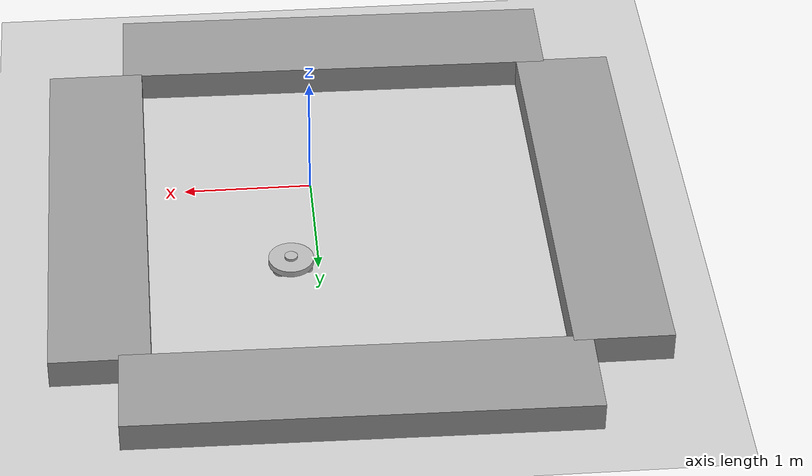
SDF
<sdf version="1.7">
 <world name="default">
  <model name="ground_plane">
   <static>1</static>
   <link name="link">
    <collision name="collision">
     <geometry><plane><normal>0 0 1</normal><size>100 100</size></plane></geometry>
     <surface>
      <contact><collide_bitmask>65535</collide_bitmask></contact>
      <friction><ode><mu>100</mu><mu2>50</mu2></ode></friction>
     </surface>
    </collision>
    <visual name="visual">
     <cast_shadows>0</cast_shadows>
     <geometry><plane><normal>0 0 1</normal><size>100 100</size></plane></geometry>
     <material>
      <script><uri>file://media/materials/scripts/gazebo.material</uri><name>Gazebo/Grey</name></script>
     </material>
    </visual>
   </link>
  </model>
  <light name="sun" type="directional">
   <pose>0 0 10 0 -0 0</pose>
   <diffuse>0.8 0.8 0.8 1</diffuse>
   <specular>0.2 0.2 0.2 1</specular>
   <attenuation>
    <range>1000</range>
    <constant>0.9</constant>
    <linear>0.01</linear>
    <quadratic>0.001</quadratic>
   </attenuation>
   <direction>-0.5 0.1 -0.9</direction>
   <spot><inner_angle>0</inner_angle><outer_angle>0</outer_angle><falloff>0</falloff></spot>
  </light>
  <plugin name="ros_gazebo" filename="libgazebo_ros_init.so"/>
  <plugin name="ros_gazebo_factory" filename="libgazebo_ros_factory.so"/>
  <gravity>0 0 -9.8</gravity>
  <magnetic_field>6e-06 2.3e-05 -4.2e-05</magnetic_field>
  <atmosphere type="adiabatic"/>
  <physics type="ode">
   <max_step_size>0.001</max_step_size>
   <real_time_factor>1</real_time_factor>
   <real_time_update_rate>1000</real_time_update_rate>
  </physics>
  <scene><ambient>0.4 0.4 0.4 1</ambient><background>0.7 0.7 0.7 1</background><shadows>1</shadows></scene>
  <audio><device>default</device></audio>
  <spherical_coordinates>
   <surface_model>EARTH_WGS84</surface_model>
   <latitude_deg>0</latitude_deg>
   <longitude_deg>0</longitude_deg>
   <elevation>0</elevation>
   <heading_deg>0</heading_deg>
  </spherical_coordinates>
  <model name="mbot">
   <link name="odom">
    <inertial>
     <pose>0 0 0.0056 0 -0 0</pose>
     <mass>1.25</mass>
     <inertia>
      <ixx>0.0213058</ixx>
      <ixy>0</ixy>
      <ixz>0</ixz>
      <iyy>0.0213058</iyy>
      <iyz>0</iyz>
      <izz>0.0111</izz>
     </inertia>
    </inertial>
    <collision name="odom_fixed_joint_lump__base_link_collision">
     <geometry><cylinder><length>0.05</length><radius>0.175</radius></cylinder></geometry>
    </collision>
    <collision name="odom_fixed_joint_lump__imu_link_collision_1">
     <geometry><box><size>0.01 0.01 0.01</size></box></geometry>
    </collision>
    <collision name="odom_fixed_joint_lump__laser_link_collision_2">
     <pose>0 0 0.035 0 -0 0</pose>
     <geometry><cylinder><length>0.05</length><radius>0.05</radius></cylinder></geometry>
    </collision>
    <visual name="odom_fixed_joint_lump__base_link_visual">
     <geometry><cylinder><length>0.05</length><radius>0.175</radius></cylinder></geometry>
    </visual>
    <visual name="odom_fixed_joint_lump__imu_link_visual_1">
     <geometry><box><size>0.01 0.01 0.01</size></box></geometry>
    </visual>
    <visual name="odom_fixed_joint_lump__laser_link_visual_2">
     <pose>0 0 0.035 0 -0 0</pose>
     <geometry><cylinder><length>0.02</length><radius>0.05</radius></cylinder></geometry>
    </visual>
    <sensor name="imu_sensor" type="imu">
     <always_on>1</always_on>
     <update_rate>100</update_rate>
     <visualize>0</visualize>
     <plugin name="imu_plugin" filename="libgazebo_ros_imu_sensor.so">
      <ros>
       <namespace>/mbot</namespace>
       <remapping>imu/data_raw:=imu/data_raw</remapping>
       <remapping>imu/data:=imu/data</remapping>
       <remapping>imu/temperature:=imu/temperature</remapping>
      </ros>
      <frame_name>imu_link</frame_name>
      <topic>imu/data</topic>
      <queue_size>10</queue_size>
      <gaussian_noise>0.0</gaussian_noise>
      <update_rate>100.0</update_rate>
     </plugin>
     <linear_acceleration>
      <noise type="gaussian">
       <mean>0.0</mean>
       <stddev>0.01</stddev>
       <bias_mean>0.0</bias_mean>
       <bias_stddev>0.001</bias_stddev>
      </noise>
     </linear_acceleration>
     <angular_velocity>
      <noise type="gaussian">
       <mean>0.0</mean>
       <stddev>0.005</stddev>
       <bias_mean>0.0</bias_mean>
       <bias_stddev>0.0001</bias_stddev>
      </noise>
     </angular_velocity>
    </sensor>
    <sensor name="laser_sensor" type="ray">
     <visualize>0</visualize>
     <update_rate>10</update_rate>
     <ray>
      <scan>
       <horizontal>
        <samples>360</samples>
        <resolution>1</resolution>
        <min_angle>0</min_angle>
        <max_angle>6.28319</max_angle>
       </horizontal>
       <vertical><samples>1</samples><min_angle>0</min_angle><max_angle>0</max_angle></vertical>
      </scan>
      <range><min>0.1</min><max>10</max><resolution>0.01</resolution></range>
     </ray>
     <plugin name="laser_plugin" filename="libgazebo_ros_ray_sensor.so">
      <ros><namespace>/mbot</namespace><remapping>scan:=laser/scan</remapping></ros>
      <output_type>sensor_msgs/LaserScan</output_type>
     </plugin>
     <pose>0 0 0.035 0 -0 0</pose>
    </sensor>
   </link>
   <joint name="caster_joint" type="revolute">
    <pose relative_to="odom">0.15 0 -0.05 0 -0 0</pose>
    <parent>odom</parent>
    <child>caster_wheel_link</child>
    <axis>
     <xyz>0 0 1</xyz>
     <limit><lower>-1e+16</lower><upper>1e+16</upper></limit>
     <dynamics><spring_reference>0</spring_reference><spring_stiffness>0</spring_stiffness></dynamics>
    </axis>
   </joint>
   <link name="caster_wheel_link">
    <pose relative_to="caster_joint">0 0 0 0 -0 0</pose>
    <inertial>
     <mass>0.05</mass>
     <inertia><ixx>0.0001</ixx><ixy>0</ixy><ixz>0</ixz><iyy>0.0001</iyy><iyz>0</iyz><izz>0.0001</izz></inertia>
    </inertial>
    <collision name="caster_wheel_link_collision">
     <geometry><sphere><radius>0.025</radius></sphere></geometry>
    </collision>
    <visual name="caster_wheel_link_visual"><geometry><sphere><radius>0.025</radius></sphere></geometry></visual>
   </link>
   <joint name="left_wheel_joint" type="revolute">
    <pose relative_to="odom">-0.05 0.125 -0.025 0 -0 0</pose>
    <parent>odom</parent>
    <child>left_wheel_link</child>
    <axis>
     <xyz>0 1 0</xyz>
     <limit><lower>-1e+16</lower><upper>1e+16</upper></limit>
     <dynamics><spring_reference>0</spring_reference><spring_stiffness>0</spring_stiffness></dynamics>
    </axis>
   </joint>
   <link name="left_wheel_link">
    <pose relative_to="left_wheel_joint">0 0 0 0 -0 0</pose>
    <inertial>
     <mass>0.1</mass>
     <inertia><ixx>0.001</ixx><ixy>0</ixy><ixz>0</ixz><iyy>0.001</iyy><iyz>0</iyz><izz>0.001</izz></inertia>
    </inertial>
    <collision name="left_wheel_link_collision">
     <pose>0 0 0 1.5708 -0 0</pose>
     <geometry><cylinder><length>0.02</length><radius>0.05</radius></cylinder></geometry>
    </collision>
    <visual name="left_wheel_link_visual">
     <pose>0 0 0 1.5708 -0 0</pose>
     <geometry><cylinder><length>0.02</length><radius>0.05</radius></cylinder></geometry>
    </visual>
   </link>
   <joint name="right_wheel_joint" type="revolute">
    <pose relative_to="odom">-0.05 -0.125 -0.025 0 -0 0</pose>
    <parent>odom</parent>
    <child>right_wheel_link</child>
    <axis>
     <xyz>0 1 0</xyz>
     <limit><lower>-1e+16</lower><upper>1e+16</upper></limit>
     <dynamics><spring_reference>0</spring_reference><spring_stiffness>0</spring_stiffness></dynamics>
    </axis>
   </joint>
   <link name="right_wheel_link">
    <pose relative_to="right_wheel_joint">0 0 0 0 -0 0</pose>
    <inertial>
     <mass>0.1</mass>
     <inertia><ixx>0.001</ixx><ixy>0</ixy><ixz>0</ixz><iyy>0.001</iyy><iyz>0</iyz><izz>0.001</izz></inertia>
    </inertial>
    <collision name="right_wheel_link_collision">
     <pose>0 0 0 1.5708 -0 0</pose>
     <geometry><cylinder><length>0.02</length><radius>0.05</radius></cylinder></geometry>
    </collision>
    <visual name="right_wheel_link_visual">
     <pose>0 0 0 1.5708 -0 0</pose>
     <geometry><cylinder><length>0.02</length><radius>0.05</radius></cylinder></geometry>
    </visual>
   </link>
   <static>0</static>
   <plugin name="differential_drive" filename="libgazebo_ros_diff_drive.so">
    <ros>
     <namespace>/mbot</namespace>
     <remapping>cmd_vel:=cmd_vel</remapping>
     <remapping>odom:=odom</remapping>
    </ros>
    <wheel_separation>0.25</wheel_separation>
    <wheel_diameter>0.1</wheel_diameter>
    <max_wheel_speed>2.0</max_wheel_speed>
    <torque>10.0</torque>
    <left_joint>left_wheel_joint</left_joint>
    <right_joint>right_wheel_joint</right_joint>
    <publish_odom>1</publish_odom>
    <publish_odom_tf>1</publish_odom_tf>
    <publish_wheel_tf>1</publish_wheel_tf>
   </plugin>
   <pose>0.212279 0.988361 0.075 -0 1e-06 2.71185</pose>
  </model>
  <model name="wall">
   <link name="link">
    <inertial>
     <mass>0.611483</mass>
     <inertia>
      <ixx>0.624096</ixx>
      <ixy>0</ixy>
      <ixz>0</ixz>
      <iyy>0.0318601</iyy>
      <iyz>0</iyz>
      <izz>0.65049</izz>
     </inertia>
    </inertial>
    <pose>-1.34235 1.17237 -5e-06 0 -0 0</pose>
    <visual name="visual">
     <geometry><box><size>0.75604 3.49197 0.2316</size></box></geometry>
     <material>
      <script><name>Gazebo/Grey</name><uri>file://media/materials/scripts/gazebo.material</uri></script>
      <shader type="pixel"/>
     </material>
    </visual>
    <collision name="collision">
     <geometry><box><size>0.75604 3.49197 0.2316</size></box></geometry>
     <surface>
      <friction>
       <ode><mu>1</mu><mu2>1</mu2><fdir1>0 0 0</fdir1><slip1>0</slip1><slip2>0</slip2></ode>
       <torsional>
        <coefficient>1</coefficient>
        <patch_radius>0</patch_radius>
        <surface_radius>0</surface_radius>
        <use_patch_radius>1</use_patch_radius>
        <ode><slip>0</slip></ode>
       </torsional>
      </friction>
      <bounce><restitution_coefficient>0</restitution_coefficient><threshold>1e+06</threshold></bounce>
      <contact>
       <collide_without_contact>0</collide_without_contact>
       <collide_without_contact_bitmask>1</collide_without_contact_bitmask>
       <collide_bitmask>1</collide_bitmask>
       <ode>
        <soft_cfm>0</soft_cfm>
        <soft_erp>0.2</soft_erp>
        <kp>1e+13</kp>
        <kd>1</kd>
        <max_vel>0.01</max_vel>
        <min_depth>0</min_depth>
       </ode>
       <bullet>
        <split_impulse>1</split_impulse>
        <split_impulse_penetration_threshold>-0.01</split_impulse_penetration_threshold>
        <soft_cfm>0</soft_cfm>
        <soft_erp>0.2</soft_erp>
        <kp>1e+13</kp>
        <kd>1</kd>
       </bullet>
      </contact>
     </surface>
    </collision>
   </link>
   <link name="link_clone">
    <inertial>
     <mass>0.611483</mass>
     <inertia>
      <ixx>0.624096</ixx>
      <ixy>0</ixy>
      <ixz>0</ixz>
      <iyy>0.0318601</iyy>
      <iyz>0</iyz>
      <izz>0.65049</izz>
     </inertia>
    </inertial>
    <pose>2.52018 1.13184 -1.7e-05 -1e-05 0 0</pose>
    <visual name="visual">
     <geometry><box><size>0.75604 3.49197 0.2316</size></box></geometry>
     <material>
      <script><name>Gazebo/Grey</name><uri>file://media/materials/scripts/gazebo.material</uri></script>
      <shader type="pixel"/>
     </material>
    </visual>
    <collision name="collision">
     <geometry><box><size>0.75604 3.49197 0.2316</size></box></geometry>
     <surface>
      <friction>
       <ode><mu>1</mu><mu2>1</mu2><fdir1>0 0 0</fdir1><slip1>0</slip1><slip2>0</slip2></ode>
       <torsional>
        <coefficient>1</coefficient>
        <patch_radius>0</patch_radius>
        <surface_radius>0</surface_radius>
        <use_patch_radius>1</use_patch_radius>
        <ode><slip>0</slip></ode>
       </torsional>
      </friction>
      <bounce><restitution_coefficient>0</restitution_coefficient><threshold>1e+06</threshold></bounce>
      <contact>
       <collide_without_contact>0</collide_without_contact>
       <collide_without_contact_bitmask>1</collide_without_contact_bitmask>
       <collide_bitmask>1</collide_bitmask>
       <ode>
        <soft_cfm>0</soft_cfm>
        <soft_erp>0.2</soft_erp>
        <kp>1e+13</kp>
        <kd>1</kd>
        <max_vel>0.01</max_vel>
        <min_depth>0</min_depth>
       </ode>
       <bullet>
        <split_impulse>1</split_impulse>
        <split_impulse_penetration_threshold>-0.01</split_impulse_penetration_threshold>
        <soft_cfm>0</soft_cfm>
        <soft_erp>0.2</soft_erp>
        <kp>1e+13</kp>
        <kd>1</kd>
       </bullet>
      </contact>
     </surface>
    </collision>
   </link>
   <link name="link_clone_0">
    <inertial>
     <mass>0.611483</mass>
     <inertia>
      <ixx>0.624096</ixx>
      <ixy>0</ixy>
      <ixz>0</ixz>
      <iyy>0.0318601</iyy>
      <iyz>0</iyz>
      <izz>0.65049</izz>
     </inertia>
    </inertial>
    <pose>0.545748 -0.953939 3e-06 0 1e-05 1.55763</pose>
    <visual name="visual">
     <geometry><box><size>0.75604 3.49197 0.2316</size></box></geometry>
     <material>
      <script><name>Gazebo/Grey</name><uri>file://media/materials/scripts/gazebo.material</uri></script>
      <shader type="pixel"/>
     </material>
    </visual>
    <collision name="collision">
     <geometry><box><size>0.75604 3.49197 0.2316</size></box></geometry>
     <surface>
      <friction>
       <ode><mu>1</mu><mu2>1</mu2><fdir1>0 0 0</fdir1><slip1>0</slip1><slip2>0</slip2></ode>
       <torsional>
        <coefficient>1</coefficient>
        <patch_radius>0</patch_radius>
        <surface_radius>0</surface_radius>
        <use_patch_radius>1</use_patch_radius>
        <ode><slip>0</slip></ode>
       </torsional>
      </friction>
      <bounce><restitution_coefficient>0</restitution_coefficient><threshold>1e+06</threshold></bounce>
      <contact>
       <collide_without_contact>0</collide_without_contact>
       <collide_without_contact_bitmask>1</collide_without_contact_bitmask>
       <collide_bitmask>1</collide_bitmask>
       <ode>
        <soft_cfm>0</soft_cfm>
        <soft_erp>0.2</soft_erp>
        <kp>1e+13</kp>
        <kd>1</kd>
        <max_vel>0.01</max_vel>
        <min_depth>0</min_depth>
       </ode>
       <bullet>
        <split_impulse>1</split_impulse>
        <split_impulse_penetration_threshold>-0.01</split_impulse_penetration_threshold>
        <soft_cfm>0</soft_cfm>
        <soft_erp>0.2</soft_erp>
        <kp>1e+13</kp>
        <kd>1</kd>
       </bullet>
      </contact>
     </surface>
    </collision>
   </link>
   <link name="link_clone_0_clone">
    <inertial>
     <mass>0.611483</mass>
     <inertia>
      <ixx>0.624096</ixx>
      <ixy>0</ixy>
      <ixz>0</ixz>
      <iyy>0.0318601</iyy>
      <iyz>0</iyz>
      <izz>0.65049</izz>
     </inertia>
    </inertial>
    <pose>0.639298 3.22913 -2.9e-05 0 2e-05 1.55763</pose>
    <visual name="visual">
     <geometry><box><size>0.75604 3.49197 0.2316</size></box></geometry>
     <material>
      <script><name>Gazebo/Grey</name><uri>file://media/materials/scripts/gazebo.material</uri></script>
      <shader type="pixel"/>
     </material>
    </visual>
    <collision name="collision">
     <geometry><box><size>0.75604 3.49197 0.2316</size></box></geometry>
     <surface>
      <friction>
       <ode><mu>1</mu><mu2>1</mu2><fdir1>0 0 0</fdir1><slip1>0</slip1><slip2>0</slip2></ode>
       <torsional>
        <coefficient>1</coefficient>
        <patch_radius>0</patch_radius>
        <surface_radius>0</surface_radius>
        <use_patch_radius>1</use_patch_radius>
        <ode><slip>0</slip></ode>
       </torsional>
      </friction>
      <bounce><restitution_coefficient>0</restitution_coefficient><threshold>1e+06</threshold></bounce>
      <contact>
       <collide_without_contact>0</collide_without_contact>
       <collide_without_contact_bitmask>1</collide_without_contact_bitmask>
       <collide_bitmask>1</collide_bitmask>
       <ode>
        <soft_cfm>0</soft_cfm>
        <soft_erp>0.2</soft_erp>
        <kp>1e+13</kp>
        <kd>1</kd>
        <max_vel>0.01</max_vel>
        <min_depth>0</min_depth>
       </ode>
       <bullet>
        <split_impulse>1</split_impulse>
        <split_impulse_penetration_threshold>-0.01</split_impulse_penetration_threshold>
        <soft_cfm>0</soft_cfm>
        <soft_erp>0.2</soft_erp>
        <kp>1e+13</kp>
        <kd>1</kd>
       </bullet>
      </contact>
     </surface>
    </collision>
   </link>
   <static>0</static>
   <pose>-0.833503 -0.672082 0.115805 0 -0 0</pose>
  </model>
 </world>
</sdf>
